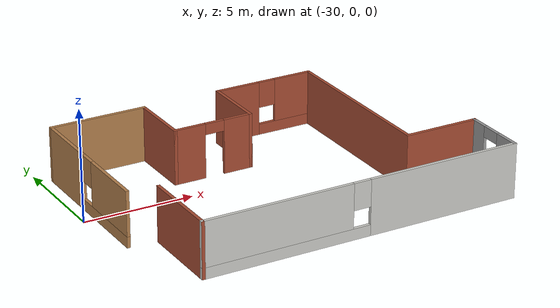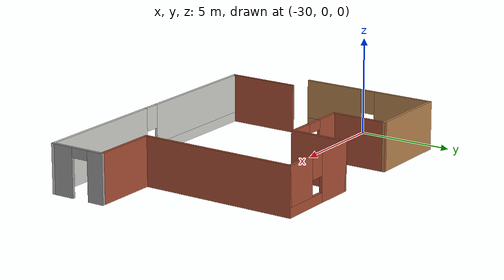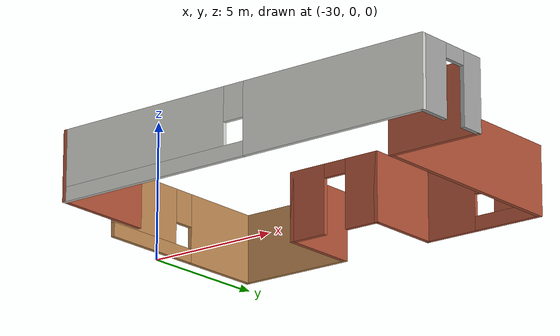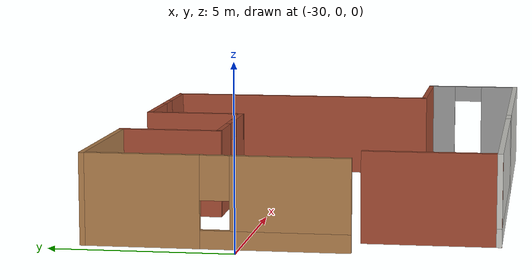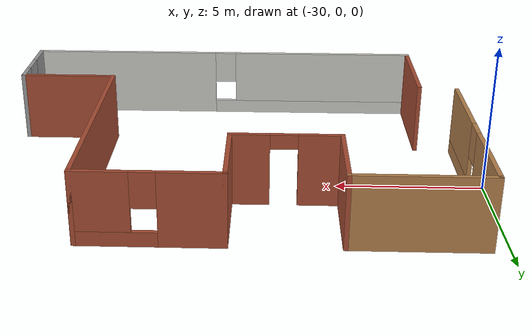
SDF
<?xml version='1.0'?>
<sdf version='1.6'>
  <model name='building'>
    <pose frame=''>-21.4649 -1.26696 0 0 -0 0</pose>
    <link name='Wall_10'>
      <pose frame=''>-1.8 2.625 0 0 -0 0</pose>
      <visual name='Wall_10_Visual_0'>
        <pose frame=''>-1.13232 0 1.25 0 -0 0</pose>
        <geometry>
          <box>
            <size>1.48536 0.15 2.5</size>
          </box>
        </geometry>
        <material>
          <script>
            <uri>file://media/materials/scripts/gazebo.material</uri>
            <name>Gazebo/Bricks</name>
          </script>
          <ambient>0.996078 0.47451 0.0196078 1</ambient>
        </material>
        <meta>
          <layer>0</layer>
        </meta>
      </visual>
      <collision name='Wall_10_Collision_0'>
        <geometry>
          <box>
            <size>1.48536 0.15 2.5</size>
          </box>
        </geometry>
        <pose frame=''>-1.13232 0 1.25 0 -0 0</pose>
      </collision>
      <visual name='Wall_10_Visual_1'>
        <pose frame=''>1.19268 0 1.25 0 -0 0</pose>
        <geometry>
          <box>
            <size>1.36464 0.15 2.5</size>
          </box>
        </geometry>
        <material>
          <script>
            <uri>file://media/materials/scripts/gazebo.material</uri>
            <name>Gazebo/Bricks</name>
          </script>
          <ambient>0.996078 0.47451 0.0196078 1</ambient>
        </material>
        <meta>
          <layer>0</layer>
        </meta>
      </visual>
      <collision name='Wall_10_Collision_1'>
        <geometry>
          <box>
            <size>1.36464 0.15 2.5</size>
          </box>
        </geometry>
        <pose frame=''>1.19268 0 1.25 0 -0 0</pose>
      </collision>
      <visual name='Wall_10_Visual_2'>
        <pose frame=''>0.06036 0 2.25 0 -0 0</pose>
        <geometry>
          <box>
            <size>0.9 0.15 0.5</size>
          </box>
        </geometry>
        <material>
          <script>
            <uri>file://media/materials/scripts/gazebo.material</uri>
            <name>Gazebo/Bricks</name>
          </script>
          <ambient>0.996078 0.47451 0.0196078 1</ambient>
        </material>
        <meta>
          <layer>0</layer>
        </meta>
      </visual>
      <collision name='Wall_10_Collision_2'>
        <geometry>
          <box>
            <size>0.9 0.15 0.5</size>
          </box>
        </geometry>
        <pose frame=''>0.06036 0 2.25 0 -0 0</pose>
      </collision>
    </link>
    <link name='Wall_11'>
      <collision name='Wall_11_Collision'>
        <geometry>
          <box>
            <size>3 0.15 2.5</size>
          </box>
        </geometry>
        <pose frame=''>0 0 1.25 0 -0 0</pose>
      </collision>
      <visual name='Wall_11_Visual'>
        <pose frame=''>0 0 1.25 0 -0 0</pose>
        <geometry>
          <box>
            <size>3 0.15 2.5</size>
          </box>
        </geometry>
        <material>
          <script>
            <uri>file://media/materials/scripts/gazebo.material</uri>
            <name>Gazebo/Bricks</name>
          </script>
          <ambient>0.996078 0.47451 0.0196078 1</ambient>
        </material>
        <meta>
          <layer>0</layer>
        </meta>
      </visual>
      <pose frame=''>1e-06 4.05 0 0 -0 1.5708</pose>
    </link>
    <link name='Wall_12'>
      <pose frame=''>2.3 5.475 0 0 -0 0</pose>
      <visual name='Wall_12_Visual_0'>
        <pose frame=''>-1.32442 0 1.25 0 -0 0</pose>
        <geometry>
          <box>
            <size>2.10115 0.15 2.5</size>
          </box>
        </geometry>
        <material>
          <script>
            <uri>file://media/materials/scripts/gazebo.material</uri>
            <name>Gazebo/Bricks</name>
          </script>
          <ambient>0.996078 0.47451 0.0196078 1</ambient>
        </material>
        <meta>
          <layer>0</layer>
        </meta>
      </visual>
      <collision name='Wall_12_Collision_0'>
        <geometry>
          <box>
            <size>2.10115 0.15 2.5</size>
          </box>
        </geometry>
        <pose frame=''>-1.32442 0 1.25 0 -0 0</pose>
      </collision>
      <visual name='Wall_12_Visual_1'>
        <pose frame=''>1.05058 0 0.25 0 -0 0</pose>
        <geometry>
          <box>
            <size>2.64885 0.15 0.5</size>
          </box>
        </geometry>
        <material>
          <script>
            <uri>file://media/materials/scripts/gazebo.material</uri>
            <name>Gazebo/Bricks</name>
          </script>
          <ambient>0.996078 0.47451 0.0196078 1</ambient>
        </material>
        <meta>
          <layer>0</layer>
        </meta>
      </visual>
      <collision name='Wall_12_Collision_1'>
        <geometry>
          <box>
            <size>2.64885 0.15 0.5</size>
          </box>
        </geometry>
        <pose frame=''>1.05058 0 0.25 0 -0 0</pose>
      </collision>
      <visual name='Wall_12_Visual_2'>
        <pose frame=''>1.45057 0 1.5 0 -0 0</pose>
        <geometry>
          <box>
            <size>1.84885 0.15 2</size>
          </box>
        </geometry>
        <material>
          <script>
            <uri>file://media/materials/scripts/gazebo.material</uri>
            <name>Gazebo/Bricks</name>
          </script>
          <ambient>0.996078 0.47451 0.0196078 1</ambient>
        </material>
        <meta>
          <layer>0</layer>
        </meta>
      </visual>
      <collision name='Wall_12_Collision_2'>
        <geometry>
          <box>
            <size>1.84885 0.15 2</size>
          </box>
        </geometry>
        <pose frame=''>1.45057 0 1.5 0 -0 0</pose>
      </collision>
      <visual name='Wall_12_Visual_3'>
        <pose frame=''>0.12615 0 1.9 0 -0 0</pose>
        <geometry>
          <box>
            <size>0.8 0.15 1.2</size>
          </box>
        </geometry>
        <material>
          <script>
            <uri>file://media/materials/scripts/gazebo.material</uri>
            <name>Gazebo/Bricks</name>
          </script>
          <ambient>0.996078 0.47451 0.0196078 1</ambient>
        </material>
        <meta>
          <layer>0</layer>
        </meta>
      </visual>
      <collision name='Wall_12_Collision_3'>
        <geometry>
          <box>
            <size>0.8 0.15 1.2</size>
          </box>
        </geometry>
        <pose frame=''>0.12615 0 1.9 0 -0 0</pose>
      </collision>
    </link>
    <link name='Wall_13'>
      <collision name='Wall_13_Collision'>
        <geometry>
          <box>
            <size>8.25 0.15 2.5</size>
          </box>
        </geometry>
        <pose frame=''>0 0 1.25 0 -0 0</pose>
      </collision>
      <visual name='Wall_13_Visual'>
        <pose frame=''>0 0 1.25 0 -0 0</pose>
        <geometry>
          <box>
            <size>8.25 0.15 2.5</size>
          </box>
        </geometry>
        <material>
          <script>
            <uri>file://media/materials/scripts/gazebo.material</uri>
            <name>Gazebo/Bricks</name>
          </script>
          <ambient>0.435294 0.796078 0.67451 1</ambient>
        </material>
        <meta>
          <layer>0</layer>
        </meta>
      </visual>
      <pose frame=''>4.6 1.425 0 0 0 -1.5708</pose>
    </link>
    <link name='Wall_14'>
      <collision name='Wall_14_Collision'>
        <geometry>
          <box>
            <size>3.5 0.15 2.5</size>
          </box>
        </geometry>
        <pose frame=''>0 0 1.25 0 -0 0</pose>
      </collision>
      <visual name='Wall_14_Visual'>
        <pose frame=''>0 0 1.25 0 -0 0</pose>
        <geometry>
          <box>
            <size>3.5 0.15 2.5</size>
          </box>
        </geometry>
        <material>
          <script>
            <uri>file://media/materials/scripts/gazebo.material</uri>
            <name>Gazebo/Bricks</name>
          </script>
          <ambient>1 1 1 1</ambient>
        </material>
        <meta>
          <layer>0</layer>
        </meta>
      </visual>
      <pose frame=''>6.275 -2.625 0 0 -0 0</pose>
    </link>
    <link name='Wall_15'>
      <pose frame=''>7.95 -4.05 0 0 0 -1.5708</pose>
      <visual name='Wall_15_Visual_0'>
        <pose frame=''>-1.05683 0 1.25 0 -0 0</pose>
        <geometry>
          <box>
            <size>0.886347 0.15 2.5</size>
          </box>
        </geometry>
        <material>
          <script>
            <uri>file://media/materials/scripts/gazebo.material</uri>
            <name>Gazebo/Grey</name>
          </script>
          <ambient>1 1 1 1</ambient>
        </material>
        <meta>
          <layer>0</layer>
        </meta>
      </visual>
      <collision name='Wall_15_Collision_0'>
        <geometry>
          <box>
            <size>0.886347 0.15 2.5</size>
          </box>
        </geometry>
        <pose frame=''>-1.05683 0 1.25 0 -0 0</pose>
      </collision>
      <visual name='Wall_15_Visual_1'>
        <pose frame=''>0.893174 0 1.25 0 -0 0</pose>
        <geometry>
          <box>
            <size>1.21365 0.15 2.5</size>
          </box>
        </geometry>
        <material>
          <script>
            <uri>file://media/materials/scripts/gazebo.material</uri>
            <name>Gazebo/Grey</name>
          </script>
          <ambient>1 1 1 1</ambient>
        </material>
        <meta>
          <layer>0</layer>
        </meta>
      </visual>
      <collision name='Wall_15_Collision_1'>
        <geometry>
          <box>
            <size>1.21365 0.15 2.5</size>
          </box>
        </geometry>
        <pose frame=''>0.893174 0 1.25 0 -0 0</pose>
      </collision>
      <visual name='Wall_15_Visual_2'>
        <pose frame=''>-0.163653 0 2.25 0 -0 0</pose>
        <geometry>
          <box>
            <size>0.9 0.15 0.5</size>
          </box>
        </geometry>
        <material>
          <script>
            <uri>file://media/materials/scripts/gazebo.material</uri>
            <name>Gazebo/Grey</name>
          </script>
          <ambient>1 1 1 1</ambient>
        </material>
        <meta>
          <layer>0</layer>
        </meta>
      </visual>
      <collision name='Wall_15_Collision_2'>
        <geometry>
          <box>
            <size>0.9 0.15 0.5</size>
          </box>
        </geometry>
        <pose frame=''>-0.163653 0 2.25 0 -0 0</pose>
      </collision>
    </link>
    <link name='Wall_16'>
      <pose frame=''>0.650001 -5.475 0 0 -0 3.14159</pose>
      <visual name='Wall_16_Visual_0'>
        <pose frame=''>-3.82995 0 1.25 0 -0 0</pose>
        <geometry>
          <box>
            <size>7.0901 0.15 2.5</size>
          </box>
        </geometry>
        <material>
          <script>
            <uri>file://media/materials/scripts/gazebo.material</uri>
            <name>Gazebo/CeilingTiled</name>
          </script>
          <ambient>0.760784 0.662745 0.627451 1</ambient>
        </material>
        <meta>
          <layer>0</layer>
        </meta>
      </visual>
      <collision name='Wall_16_Collision_0'>
        <geometry>
          <box>
            <size>7.0901 0.15 2.5</size>
          </box>
        </geometry>
        <pose frame=''>-3.82995 0 1.25 0 -0 0</pose>
      </collision>
      <visual name='Wall_16_Visual_1'>
        <pose frame=''>3.54505 0 0.25 0 -0 0</pose>
        <geometry>
          <box>
            <size>7.6599 0.15 0.5</size>
          </box>
        </geometry>
        <material>
          <script>
            <uri>file://media/materials/scripts/gazebo.material</uri>
            <name>Gazebo/CeilingTiled</name>
          </script>
          <ambient>0.760784 0.662745 0.627451 1</ambient>
        </material>
        <meta>
          <layer>0</layer>
        </meta>
      </visual>
      <collision name='Wall_16_Collision_1'>
        <geometry>
          <box>
            <size>7.6599 0.15 0.5</size>
          </box>
        </geometry>
        <pose frame=''>3.54505 0 0.25 0 -0 0</pose>
      </collision>
      <visual name='Wall_16_Visual_2'>
        <pose frame=''>3.94505 0 1.5 0 -0 0</pose>
        <geometry>
          <box>
            <size>6.8599 0.15 2</size>
          </box>
        </geometry>
        <material>
          <script>
            <uri>file://media/materials/scripts/gazebo.material</uri>
            <name>Gazebo/CeilingTiled</name>
          </script>
          <ambient>0.760784 0.662745 0.627451 1</ambient>
        </material>
        <meta>
          <layer>0</layer>
        </meta>
      </visual>
      <collision name='Wall_16_Collision_2'>
        <geometry>
          <box>
            <size>6.8599 0.15 2</size>
          </box>
        </geometry>
        <pose frame=''>3.94505 0 1.5 0 -0 0</pose>
      </collision>
      <visual name='Wall_16_Visual_3'>
        <pose frame=''>0.115103 0 1.9 0 -0 0</pose>
        <geometry>
          <box>
            <size>0.8 0.15 1.2</size>
          </box>
        </geometry>
        <material>
          <script>
            <uri>file://media/materials/scripts/gazebo.material</uri>
            <name>Gazebo/CeilingTiled</name>
          </script>
          <ambient>0.760784 0.662745 0.627451 1</ambient>
        </material>
        <meta>
          <layer>0</layer>
        </meta>
      </visual>
      <collision name='Wall_16_Collision_3'>
        <geometry>
          <box>
            <size>0.8 0.15 1.2</size>
          </box>
        </geometry>
        <pose frame=''>0.115103 0 1.9 0 -0 0</pose>
      </collision>
    </link>
    <link name='Wall_17'>
      <collision name='Wall_17_Collision'>
        <geometry>
          <box>
            <size>3.75 0.15 2.5</size>
          </box>
        </geometry>
        <pose frame=''>0 0 1.25 0 -0 0</pose>
      </collision>
      <visual name='Wall_17_Visual'>
        <pose frame=''>0 0 1.25 0 -0 0</pose>
        <geometry>
          <box>
            <size>3.75 0.15 2.5</size>
          </box>
        </geometry>
        <material>
          <script>
            <uri>file://media/materials/scripts/gazebo.material</uri>
            <name>Gazebo/Bricks</name>
          </script>
          <ambient>0.235294 1 0.027451 1</ambient>
        </material>
        <meta>
          <layer>0</layer>
        </meta>
      </visual>
      <pose frame=''>-6.65 -3.675 0 0 -0 1.5708</pose>
    </link>
    <link name='Wall_22'>
      <collision name='Wall_22_Collision'>
        <geometry>
          <box>
            <size>4.5 0.15 2.5</size>
          </box>
        </geometry>
        <pose frame=''>0 0 1.25 0 -0 0</pose>
      </collision>
      <visual name='Wall_22_Visual'>
        <pose frame=''>0 0 1.25 0 -0 0</pose>
        <geometry>
          <box>
            <size>4.5 0.15 2.5</size>
          </box>
        </geometry>
        <material>
          <script>
            <uri>file://media/materials/scripts/gazebo.material</uri>
            <name>Gazebo/Wood</name>
          </script>
          <ambient>1 1 1 1</ambient>
        </material>
        <meta>
          <layer>0</layer>
        </meta>
      </visual>
      <pose frame=''>-5.775 5.475 0 0 -0 3.14159</pose>
    </link>
    <link name='Wall_23'>
      <pose frame=''>-7.95 1.925 0 0 0 -1.5708</pose>
      <visual name='Wall_23_Visual_0'>
        <pose frame=''>-2.00199 0 1.25 0 -0 0</pose>
        <geometry>
          <box>
            <size>3.24601 0.15 2.5</size>
          </box>
        </geometry>
        <material>
          <script>
            <uri>file://media/materials/scripts/gazebo.material</uri>
            <name>Gazebo/Wood</name>
          </script>
          <ambient>1 1 1 1</ambient>
        </material>
        <meta>
          <layer>0</layer>
        </meta>
      </visual>
      <collision name='Wall_23_Collision_0'>
        <geometry>
          <box>
            <size>3.24601 0.15 2.5</size>
          </box>
        </geometry>
        <pose frame=''>-2.00199 0 1.25 0 -0 0</pose>
      </collision>
      <visual name='Wall_23_Visual_1'>
        <pose frame=''>1.62301 0 0.25 0 -0 0</pose>
        <geometry>
          <box>
            <size>4.00399 0.15 0.5</size>
          </box>
        </geometry>
        <material>
          <script>
            <uri>file://media/materials/scripts/gazebo.material</uri>
            <name>Gazebo/Wood</name>
          </script>
          <ambient>1 1 1 1</ambient>
        </material>
        <meta>
          <layer>0</layer>
        </meta>
      </visual>
      <collision name='Wall_23_Collision_1'>
        <geometry>
          <box>
            <size>4.00399 0.15 0.5</size>
          </box>
        </geometry>
        <pose frame=''>1.62301 0 0.25 0 -0 0</pose>
      </collision>
      <visual name='Wall_23_Visual_2'>
        <pose frame=''>2.02301 0 1.5 0 -0 0</pose>
        <geometry>
          <box>
            <size>3.20399 0.15 2</size>
          </box>
        </geometry>
        <material>
          <script>
            <uri>file://media/materials/scripts/gazebo.material</uri>
            <name>Gazebo/Wood</name>
          </script>
          <ambient>1 1 1 1</ambient>
        </material>
        <meta>
          <layer>0</layer>
        </meta>
      </visual>
      <collision name='Wall_23_Collision_2'>
        <geometry>
          <box>
            <size>3.20399 0.15 2</size>
          </box>
        </geometry>
        <pose frame=''>2.02301 0 1.5 0 -0 0</pose>
      </collision>
      <visual name='Wall_23_Visual_3'>
        <pose frame=''>0.021012 0 1.9 0 -0 0</pose>
        <geometry>
          <box>
            <size>0.8 0.15 1.2</size>
          </box>
        </geometry>
        <material>
          <script>
            <uri>file://media/materials/scripts/gazebo.material</uri>
            <name>Gazebo/Wood</name>
          </script>
          <ambient>1 1 1 1</ambient>
        </material>
        <meta>
          <layer>0</layer>
        </meta>
      </visual>
      <collision name='Wall_23_Collision_3'>
        <geometry>
          <box>
            <size>0.8 0.15 1.2</size>
          </box>
        </geometry>
        <pose frame=''>0.021012 0 1.9 0 -0 0</pose>
      </collision>
    </link>
    <link name='Wall_9'>
      <collision name='Wall_9_Collision'>
        <geometry>
          <box>
            <size>3 0.15 2.5</size>
          </box>
        </geometry>
        <pose frame=''>0 0 1.25 0 -0 0</pose>
      </collision>
      <visual name='Wall_9_Visual'>
        <pose frame=''>0 0 1.25 0 -0 0</pose>
        <geometry>
          <box>
            <size>3 0.15 2.5</size>
          </box>
        </geometry>
        <material>
          <script>
            <uri>file://media/materials/scripts/gazebo.material</uri>
            <name>Gazebo/Bricks</name>
          </script>
          <ambient>0.996078 0.47451 0.0196078 1</ambient>
        </material>
        <meta>
          <layer>0</layer>
        </meta>
      </visual>
      <pose frame=''>-3.6 4.05 0 0 0 -1.5708</pose>
    </link>
    <static>1</static>
  </model>
</sdf>
